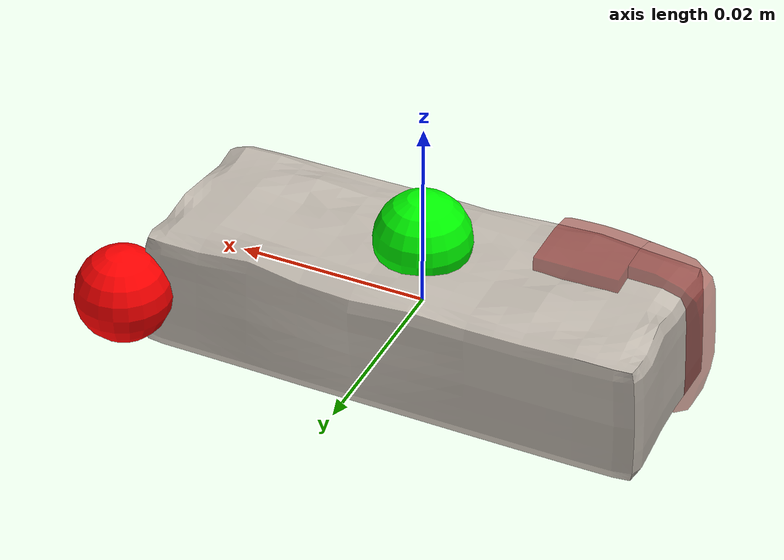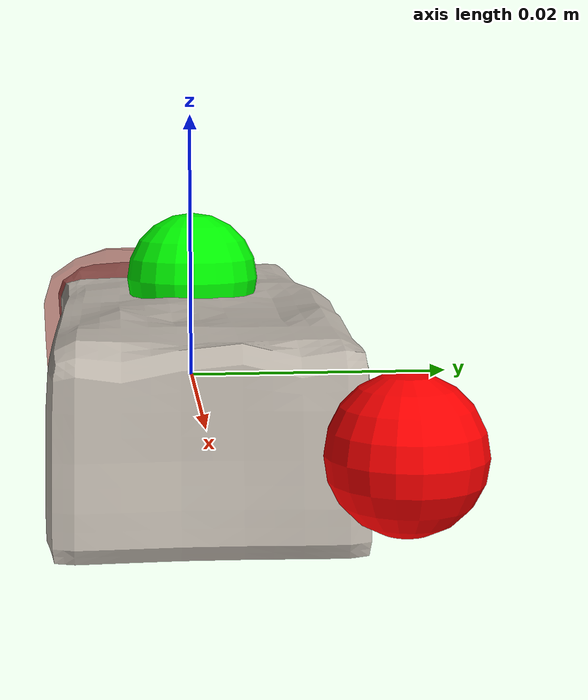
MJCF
<?xml version='1.0' encoding='UTF-8'?>
<mujoco model="model">
  <compiler angle="radian"/>
  <asset>
    <mesh file="visual/CreamCheese001.obj" name="CreamCheese001_vis"/>
    <texture file="visual/T_BC001.png" name="CreamCheese001_material" type="2d"/>
    <material name="CreamCheese001_material" rgba="1 1 1 1.0" texture="CreamCheese001_material" shininess="-35.000003814697266" specular="0.3103448502657381"/>
    <mesh file="collision/CreamCheese001002.obj" name="CreamCheese001002_mesh"/>
    <mesh file="collision/CreamCheese001001.obj" name="CreamCheese001001_mesh"/>
  </asset>
  <default>
    <default class="visual">
      <geom conaffinity="0" contype="0" group="1" type="mesh"/>
    </default>
    <default class="collision">
      <geom group="0" rgba="0.5 0 0 0.5"/>
    </default>
    <default class="spawn">
      <geom group="0" rgba="1 1 1 0.5" contype="0" conaffinity="0"/>
      <site group="0" rgba="1 1 1 0.5"/>
    </default>
    <default class="region">
      <geom group="1" conaffinity="0" contype="0" rgba="0 1 0 0"/>
    </default>
  </default>
  <worldbody>
    <body>
      <body name="object">
        <geom mesh="CreamCheese001_vis" type="mesh" solimp="0.998 0.998 0.001" solref="0.001 1" density="100" friction="0.95 0.3 0.1" class="visual" material="CreamCheese001_material"/>
        <geom mesh="CreamCheese001002_mesh" type="mesh" class="collision"/>
        <geom mesh="CreamCheese001001_mesh" type="mesh" class="collision"/>
      </body>
      <site rgba="1 0 0 1" size="0.005" pos="0.027432160000000004 0.011565330000000002 -0.00011291000000000075" name="horizontal_radius_site"/>
      <site rgba="0 1 0 1" size="0.005" pos="-5.527999999999789e-05 0.00012573000000000136 0.00754178" name="top_site"/>
      <site rgba="0 0 1 1" size="0.005" pos="-5.527999999999789e-05 0.00012573000000000136 -0.007767600000000001" name="bottom_site"/>
    </body>
  </worldbody>
  <actuator/>
</mujoco>
